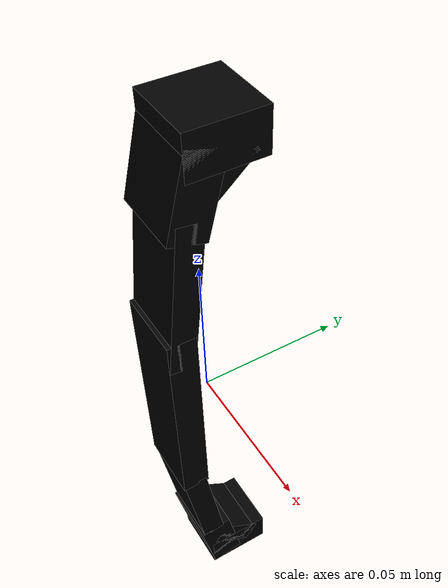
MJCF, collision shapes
<?xml version="1.0" ?>
<mujoco model="model">
    <compiler angle="radian"/>
    <asset>
        <mesh file="visuals/CabinetHandle047.obj" name="mesh"/>
        <texture file="visuals/T_BC001.png" name="tex" type="2d"/>
        <material name="mat" rgba="1 1 1 1.0" texture="tex" shininess="8" specular="8"/>
    </asset>
    <default>
        <default class="visual">
            <geom conaffinity="0" contype="0" group="1" type="mesh"/>
        </default>
        <default class="collision">
            <geom group="0" rgba="0 0 0 0"/>
        </default>
        <default class="spawn">
            <geom group="0" rgba="0 0 0 0" contype="0" conaffinity="0"/>
            <site group="0" rgba="0 0 0 0"/>
        </default>
    </default>
    <worldbody>
        <body>
            <body name="object">
                <geom mesh="mesh" type="mesh" solimp="0.998 0.998 0.001" solref="0.001 1" density="100" friction="0.95 0.3 0.1" class="visual" material="mat"/>
                <geom class="collision" type="box" pos="0.0 -0.012933514080941677 0.0" size="0.01192836556583643 0.004877060651779175 0.03721724823117256" quat="1.0 0.0 0.0 0.0"/>
                <geom class="collision" type="box" pos="-1.3156954911485228e-18 -0.010313878767192364 0.05119266360998154" size="0.01192836370319128 0.004316112492233515 0.025503046810626984" quat="0.9981622695922852 -0.060597244650125504 9.082958459353864e-18 -2.221953691382219e-19"/>
                <geom class="collision" type="box" pos="2.250568195215901e-17 -0.010193996131420135 -0.056089285761117935" size="0.01192836370319128 0.004302943591028452 0.02027921937406063" quat="0.9972715377807617 0.07382054626941681 -2.0694487282912902e-17 -8.065914667211234e-19"/>
                <geom class="collision" type="box" pos="-1.0853313567397006e-17 0.004013151861727238 0.09488841146230698" size="0.011928369291126728 0.012105558067560196 0.006724787410348654" quat="1.0 0.0 0.0 0.0" name="handle_connector"/>
                <geom class="collision" type="box" pos="-8.245003819322334e-18 -0.00513478321954608 0.08314163982868195" size="0.01192836370319128 0.006194074172526598 0.013019957579672337" quat="0.9910342693328857 -0.13360773026943207 2.529003310537783e-17 9.892850712761198e-20"/>
                <geom class="collision" type="box" pos="-9.433746731983515e-18 0.003233498428016901 0.08849526196718216" size="0.01192836370319128 0.00449305260553956 0.008921322412788868" quat="0.9072543978691101 -0.4205823540687561 8.923603272398381e-17 1.388297133512302e-18"/>
                <geom class="collision" type="box" pos="2.9686933158099376e-17 -0.003964059986174107 -0.0876886248588562" size="0.01192836370319128 0.006194074172526598 0.013019956648349762" quat="0.9954765439033508 0.09500752389431 -2.538079797963205e-17 -8.978950423492672e-19"/>
                <geom class="collision" type="box" pos="-1.0714169380656398e-17 0.003908710088580847 -0.09477459639310837" size="0.011928366497159004 0.012105558067560196 0.006724787410348654" quat="1.0 0.0 0.0 0.0"/>
                <geom class="collision" type="box" pos="2.977169600982891e-17 0.003012977074831724 -0.08807036280632019" size="0.01192836370319128 0.00449305260553956 0.008921322412788868" quat="0.889373242855072 0.457181841135025 -1.0516174767491215e-16 -2.4219960004935345e-18"/>
            </body>
        </body>
    </worldbody>
    <actuator/>
</mujoco>
